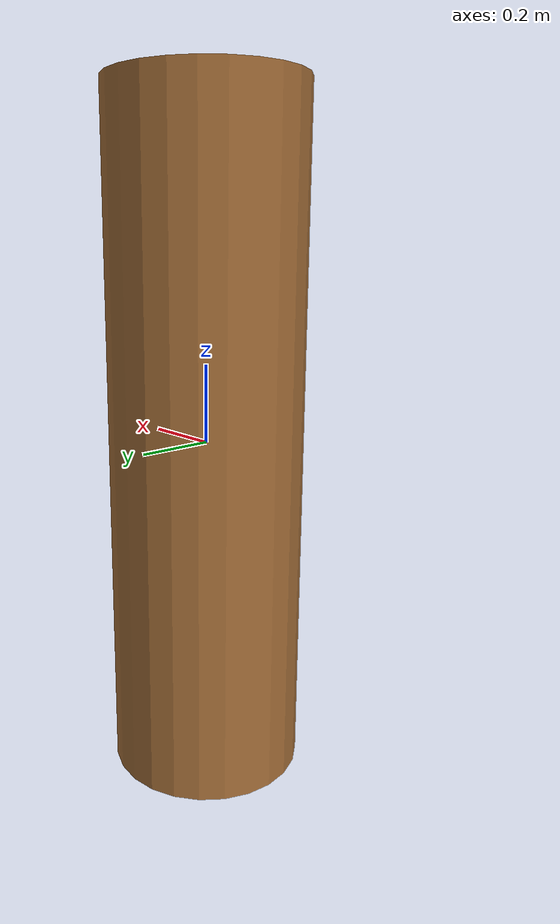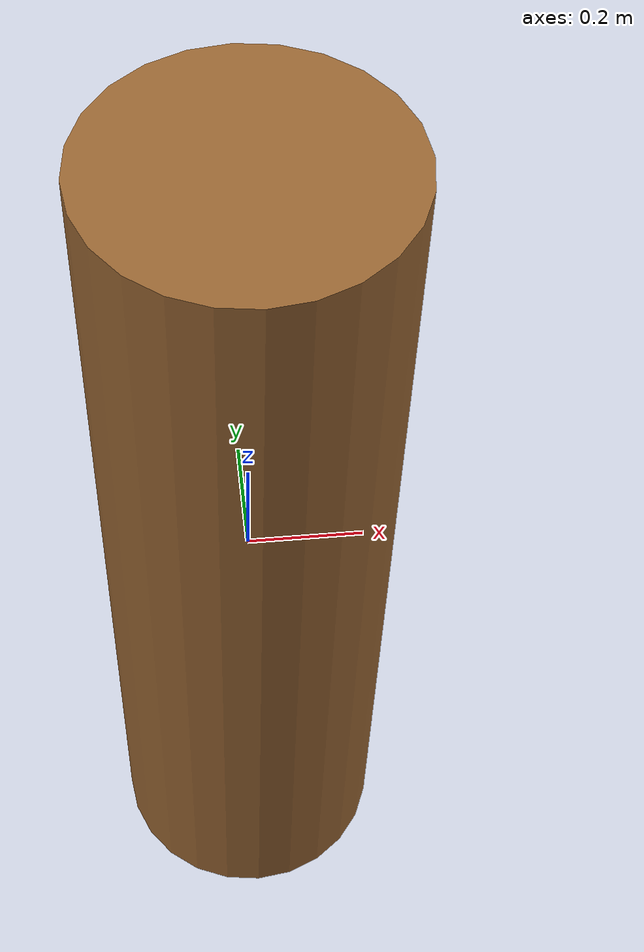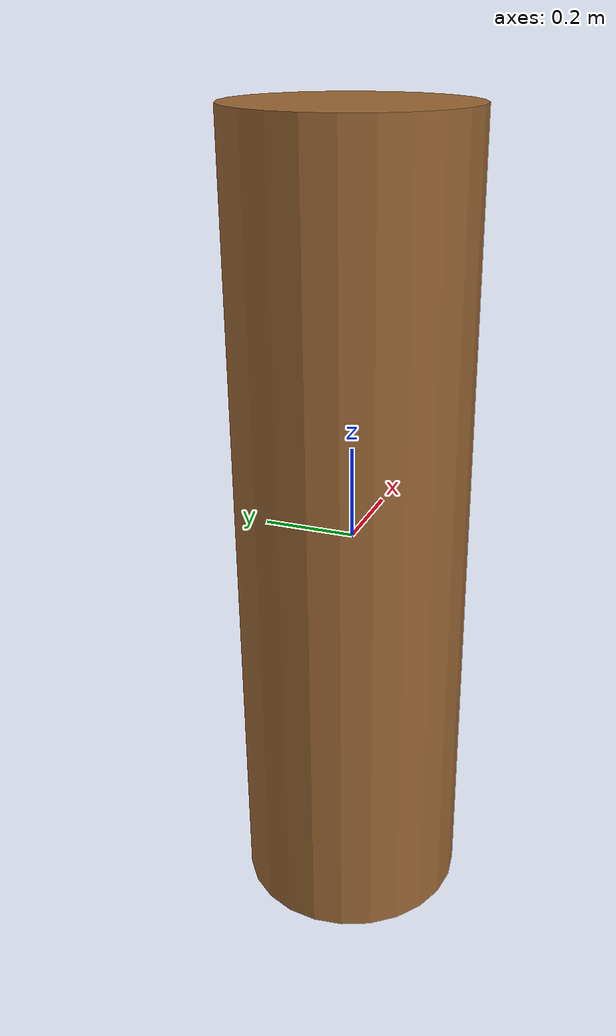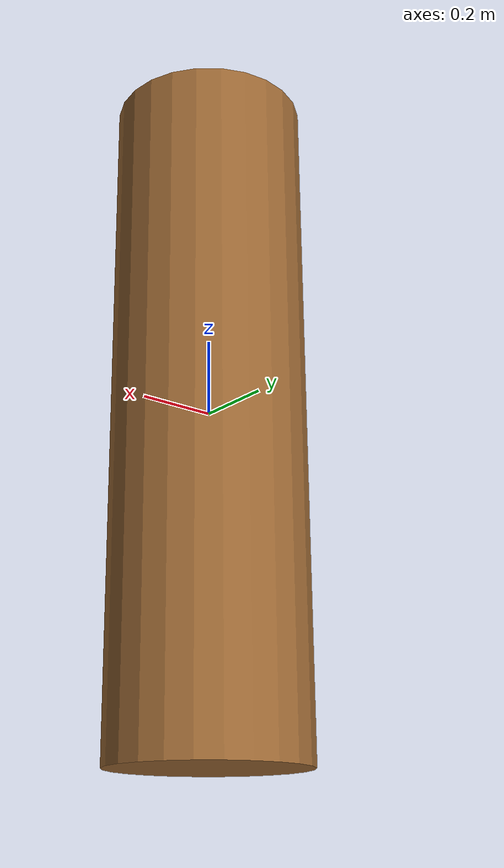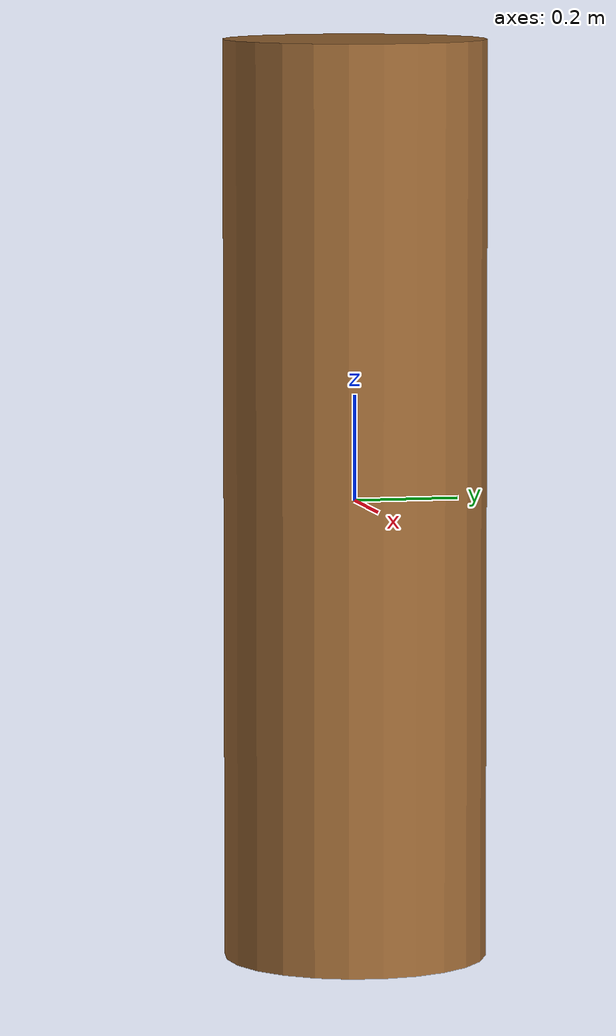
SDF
<?xml version="1.0"?>
<sdf version="1.7">
  <model name="human_actor">
    <static>true</static>
    <link name="body">
      <pose>0 0 0 0 0 0</pose>
      <!-- Approximate collision capsule for obstacle avoidance -->
      <collision name="body_col">
        <pose>0 0 0.9 0 0 0</pose>
        <geometry><cylinder><radius>0.3</radius><length>1.6</length></cylinder></geometry>
      </collision>
      <visual name="body_vis">
        <pose>0 0 0 0 0 0</pose>
        <!-- Geometry approximation — actual skin is the actor DAE -->
        <geometry><cylinder><radius>0.25</radius><length>1.75</length></cylinder></geometry>
        <material>
          <ambient>0.6 0.4 0.2 1</ambient>
          <diffuse>0.6 0.4 0.2 1</diffuse>
        </material>
      </visual>
    </link>
  </model>
</sdf>
